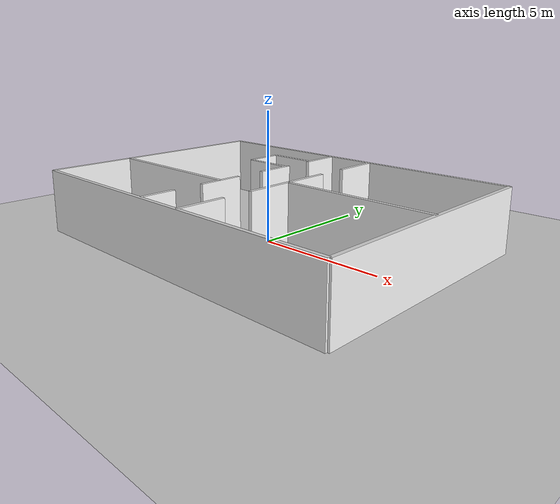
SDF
<?xml version="1.0" ?>
<sdf version="1.9">
  <world name="my_home">

    <!-- Physics -->
    <physics name="1ms" type="ignored">
      <max_step_size>0.001</max_step_size>
      <real_time_factor>1.0</real_time_factor>
    </physics>

    <!-- Plugins -->
    <plugin filename="gz-sim-physics-system" name="gz::sim::systems::Physics"></plugin>
    <plugin filename="gz-sim-user-commands-system" name="gz::sim::systems::UserCommands"></plugin>
    <plugin filename="gz-sim-scene-broadcaster-system" name="gz::sim::systems::SceneBroadcaster"></plugin>
    <plugin filename="gz-sim-sensors-system" name="gz::sim::systems::Sensors">
      <render_engine>ogre2</render_engine>
    </plugin>

    <!-- Lighting -->
    <light type="directional" name="sun">
      <cast_shadows>true</cast_shadows>
      <pose>0 0 10 0 0 0</pose>
      <diffuse>0.8 0.8 0.8 1</diffuse>
      <specular>0.2 0.2 0.2 1</specular>
      <attenuation>
        <range>1000</range>
        <constant>0.9</constant>
        <linear>0.01</linear>
        <quadratic>0.001</quadratic>
      </attenuation>
      <direction>-0.5 0.1 -0.9</direction>
    </light>

    <!-- Ground Plane -->
    <model name="ground_plane">
      <static>true</static>
      <link name="link">
        <collision name="collision">
          <geometry>
            <plane>
              <normal>0 0 1</normal>
              <size>30 30</size>
            </plane>
          </geometry>
        </collision>
        <visual name="visual">
          <geometry>
            <plane>
              <normal>0 0 1</normal>
              <size>30 30</size>
            </plane>
          </geometry>
          <material>
            <ambient>0.85 0.85 0.85 1</ambient>
            <diffuse>0.85 0.85 0.85 1</diffuse>
            <specular>0.05 0.05 0.05 1</specular>
          </material>
        </visual>
      </link>
    </model>

        <!-- APARTMENT LAYOUT (Salon + 2 Bedroom + Kitchen + WC + Hall) -->

    <!-- OUTER PERIMETER WALLS  -->

    <!-- North Wall (y = +5) -->
    <model name="wall_north">
      <static>true</static>
      <pose>0 5 1.25 0 0 0</pose>
      <link name="link">
        <collision name="collision">
          <geometry><box><size>14 0.15 2.5</size></box></geometry>
        </collision>
        <visual name="visual">
          <geometry><box><size>14 0.15 2.5</size></box></geometry>
          <material>
            <ambient>0.9 0.9 0.9 1</ambient>
            <diffuse>0.9 0.9 0.9 1</diffuse>
            <specular>0.05 0.05 0.05 1</specular>
          </material>
        </visual>
      </link>
    </model>

    <!-- South Wall (y = -5) -->
    <model name="wall_south">
      <static>true</static>
      <pose>0 -5 1.25 0 0 0</pose>
      <link name="link">
        <collision name="collision">
          <geometry><box><size>14 0.15 2.5</size></box></geometry>
        </collision>
        <visual name="visual">
          <geometry><box><size>14 0.15 2.5</size></box></geometry>
          <material>
            <ambient>0.9 0.9 0.9 1</ambient>
            <diffuse>0.9 0.9 0.9 1</diffuse>
            <specular>0.05 0.05 0.05 1</specular>
          </material>
        </visual>
      </link>
    </model>

    <!-- West Wall (x = -7) -->
    <model name="wall_west">
      <static>true</static>
      <pose>-7 0 1.25 0 0 0</pose>
      <link name="link">
        <collision name="collision">
          <geometry><box><size>0.15 10 2.5</size></box></geometry>
        </collision>
        <visual name="visual">
          <geometry><box><size>0.15 10 2.5</size></box></geometry>
          <material>
            <ambient>0.9 0.9 0.9 1</ambient>
            <diffuse>0.9 0.9 0.9 1</diffuse>
            <specular>0.05 0.05 0.05 1</specular>
          </material>
        </visual>
      </link>
    </model>

    <!-- East Wall (x = +7) -->
    <model name="wall_east">
      <static>true</static>
      <pose>7 0 1.25 0 0 0</pose>
      <link name="link">
        <collision name="collision">
          <geometry><box><size>0.15 10 2.5</size></box></geometry>
        </collision>
        <visual name="visual">
          <geometry><box><size>0.15 10 2.5</size></box></geometry>
          <material>
            <ambient>0.9 0.9 0.9 1</ambient>
            <diffuse>0.9 0.9 0.9 1</diffuse>
            <specular>0.05 0.05 0.05 1</specular>
          </material>
        </visual>
      </link>
    </model>

    <!-- INNER WALLS (DIVIDERS) -->

    <!-- Corridor boundaries are the two long walls at x=-1 and x=+1.
         We split them into segments to create door gaps (1.2m). -->

    <!-- LEFT corridor wall at x=-1, with 3 doors:
         - Kitchen door at y=-3.0
         - Living room door at y=0.0
         - WC door at y=2.75 -->

    <!-- Segment 1: y in [-5, -3.6] (len 1.4) -->
    <model name="corridor_left_seg1">
      <static>true</static>
      <pose>-1 -4.3 1.25 0 0 0</pose>
      <link name="link">
        <collision name="collision"><geometry><box><size>0.15 1.4 2.5</size></box></geometry></collision>
        <visual name="visual">
          <geometry><box><size>0.15 1.4 2.5</size></box></geometry>
          <material><ambient>0.92 0.92 0.92 1</ambient><diffuse>0.92 0.92 0.92 1</diffuse><specular>0.05 0.05 0.05 1</specular></material>
        </visual>
      </link>
    </model>

    <!-- Segment 2: y in [-2.4, -0.6] (len 1.8) -->
    <model name="corridor_left_seg2">
      <static>true</static>
      <pose>-1 -1.5 1.25 0 0 0</pose>
      <link name="link">
        <collision name="collision"><geometry><box><size>0.15 1.8 2.5</size></box></geometry></collision>
        <visual name="visual">
          <geometry><box><size>0.15 1.8 2.5</size></box></geometry>
          <material><ambient>0.92 0.92 0.92 1</ambient><diffuse>0.92 0.92 0.92 1</diffuse><specular>0.05 0.05 0.05 1</specular></material>
        </visual>
      </link>
    </model>

    <!-- Segment 3: y in [0.6, 2.15] (len 1.55) -->
    <model name="corridor_left_seg3">
      <static>true</static>
      <pose>-1 1.375 1.25 0 0 0</pose>
      <link name="link">
        <collision name="collision"><geometry><box><size>0.15 1.55 2.5</size></box></geometry></collision>
        <visual name="visual">
          <geometry><box><size>0.15 1.55 2.5</size></box></geometry>
          <material><ambient>0.92 0.92 0.92 1</ambient><diffuse>0.92 0.92 0.92 1</diffuse><specular>0.05 0.05 0.05 1</specular></material>
        </visual>
      </link>
    </model>

    <!-- Segment 4: y in [3.35, 5] (len 1.65) -->
    <model name="corridor_left_seg4">
      <static>true</static>
      <pose>-1 4.175 1.25 0 0 0</pose>
      <link name="link">
        <collision name="collision"><geometry><box><size>0.15 1.65 2.5</size></box></geometry></collision>
        <visual name="visual">
          <geometry><box><size>0.15 1.65 2.5</size></box></geometry>
          <material><ambient>0.92 0.92 0.92 1</ambient><diffuse>0.92 0.92 0.92 1</diffuse><specular>0.05 0.05 0.05 1</specular></material>
        </visual>
      </link>
    </model>

    <!-- RIGHT corridor wall at x=+1, with 2 bedroom doors:
         - Bedroom 2 door at y=-2.5
         - Bedroom 1 door at y=+2.5 -->

    <!-- Segment A: y in [-5, -3.1] (len 1.9) -->
    <model name="corridor_right_segA">
      <static>true</static>
      <pose>1 -4.05 1.25 0 0 0</pose>
      <link name="link">
        <collision name="collision"><geometry><box><size>0.15 1.9 2.5</size></box></geometry></collision>
        <visual name="visual">
          <geometry><box><size>0.15 1.9 2.5</size></box></geometry>
          <material><ambient>0.92 0.92 0.92 1</ambient><diffuse>0.92 0.92 0.92 1</diffuse><specular>0.05 0.05 0.05 1</specular></material>
        </visual>
      </link>
    </model>

    <!-- Segment B: y in [-1.9, 1.9] (len 3.8) -->
    <model name="corridor_right_segB">
      <static>true</static>
      <pose>1 0 1.25 0 0 0</pose>
      <link name="link">
        <collision name="collision"><geometry><box><size>0.15 3.8 2.5</size></box></geometry></collision>
        <visual name="visual">
          <geometry><box><size>0.15 3.8 2.5</size></box></geometry>
          <material><ambient>0.92 0.92 0.92 1</ambient><diffuse>0.92 0.92 0.92 1</diffuse><specular>0.05 0.05 0.05 1</specular></material>
        </visual>
      </link>
    </model>

    <!-- Segment C: y in [3.1, 5] (len 1.9) -->
    <model name="corridor_right_segC">
      <static>true</static>
      <pose>1 4.05 1.25 0 0 0</pose>
      <link name="link">
        <collision name="collision"><geometry><box><size>0.15 1.9 2.5</size></box></geometry></collision>
        <visual name="visual">
          <geometry><box><size>0.15 1.9 2.5</size></box></geometry>
          <material><ambient>0.92 0.92 0.92 1</ambient><diffuse>0.92 0.92 0.92 1</diffuse><specular>0.05 0.05 0.05 1</specular></material>
        </visual>
      </link>
    </model>

    <!-- Kitchen separator wall (between Salon and Kitchen), full wall at y=-1.5 for x in [-7, -1] -->
    <model name="divider_salon_kitchen">
      <static>true</static>
      <pose>-4 -1.5 1.25 0 0 0</pose>
      <link name="link">
        <collision name="collision"><geometry><box><size>6 0.15 2.5</size></box></geometry></collision>
        <visual name="visual">
          <geometry><box><size>6 0.15 2.5</size></box></geometry>
          <material><ambient>0.92 0.92 0.92 1</ambient><diffuse>0.92 0.92 0.92 1</diffuse><specular>0.05 0.05 0.05 1</specular></material>
        </visual>
      </link>
    </model>

    <!-- WC (Toilet) enclosure: x in [-3, -1], y in [2.0, 3.5] -->
    <model name="wc_left_wall">
      <static>true</static>
      <pose>-3 2.75 1.25 0 0 0</pose>
      <link name="link">
        <collision name="collision"><geometry><box><size>0.15 1.5 2.5</size></box></geometry></collision>
        <visual name="visual">
          <geometry><box><size>0.15 1.5 2.5</size></box></geometry>
          <material><ambient>0.92 0.92 0.92 1</ambient><diffuse>0.92 0.92 0.92 1</diffuse><specular>0.05 0.05 0.05 1</specular></material>
        </visual>
      </link>
    </model>

    <model name="wc_bottom_wall">
      <static>true</static>
      <pose>-2 2.0 1.25 0 0 0</pose>
      <link name="link">
        <collision name="collision"><geometry><box><size>2 0.15 2.5</size></box></geometry></collision>
        <visual name="visual">
          <geometry><box><size>2 0.15 2.5</size></box></geometry>
          <material><ambient>0.92 0.92 0.92 1</ambient><diffuse>0.92 0.92 0.92 1</diffuse><specular>0.05 0.05 0.05 1</specular></material>
        </visual>
      </link>
    </model>

    <model name="wc_top_wall">
      <static>true</static>
      <pose>-2 3.5 1.25 0 0 0</pose>
      <link name="link">
        <collision name="collision"><geometry><box><size>2 0.15 2.5</size></box></geometry></collision>
        <visual name="visual">
          <geometry><box><size>2 0.15 2.5</size></box></geometry>
          <material><ambient>0.92 0.92 0.92 1</ambient><diffuse>0.92 0.92 0.92 1</diffuse><specular>0.05 0.05 0.05 1</specular></material>
        </visual>
      </link>
    </model>

    <!-- Bedroom separator (between Bedroom 1 top and Bedroom 2 bottom), full wall at y=0 for x in [1, 7] -->
    <model name="divider_bedroom1_bedroom2">
      <static>true</static>
      <pose>4 0 1.25 0 0 0</pose>
      <link name="link">
        <collision name="collision"><geometry><box><size>6 0.15 2.5</size></box></geometry></collision>
        <visual name="visual">
          <geometry><box><size>6 0.15 2.5</size></box></geometry>
          <material><ambient>0.92 0.92 0.92 1</ambient><diffuse>0.92 0.92 0.92 1</diffuse><specular>0.05 0.05 0.05 1</specular></material>
        </visual>
      </link>
    </model>

  </world>
</sdf>
